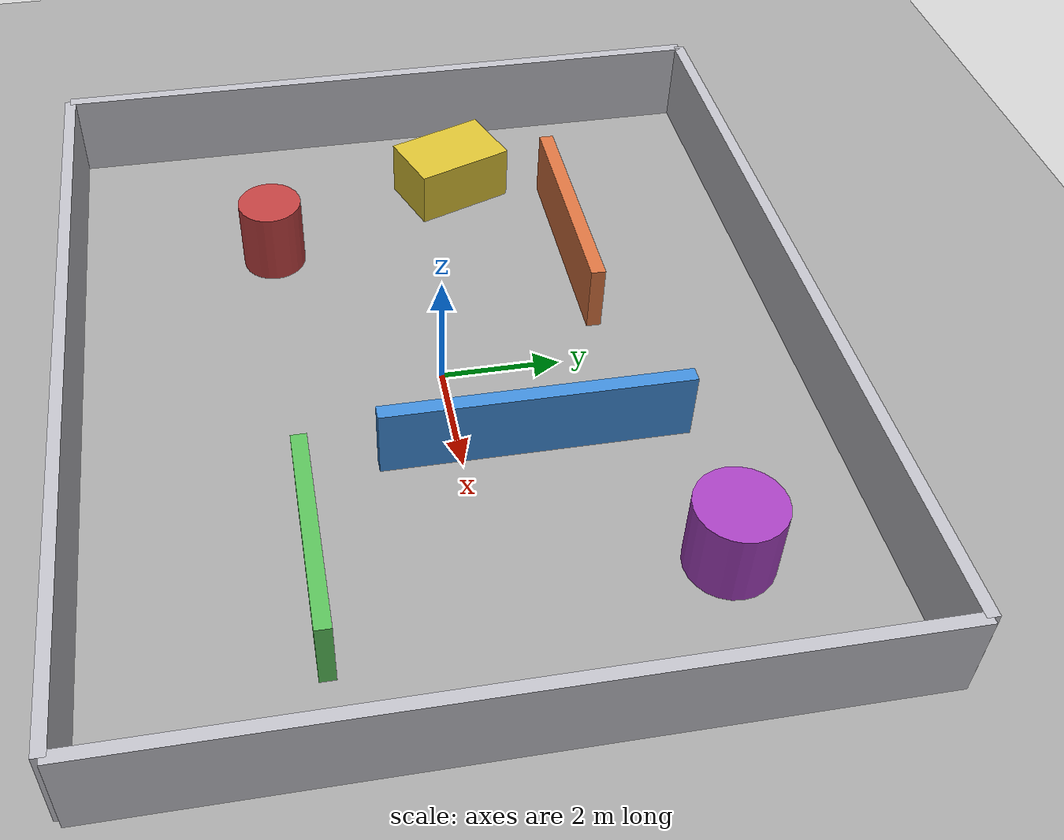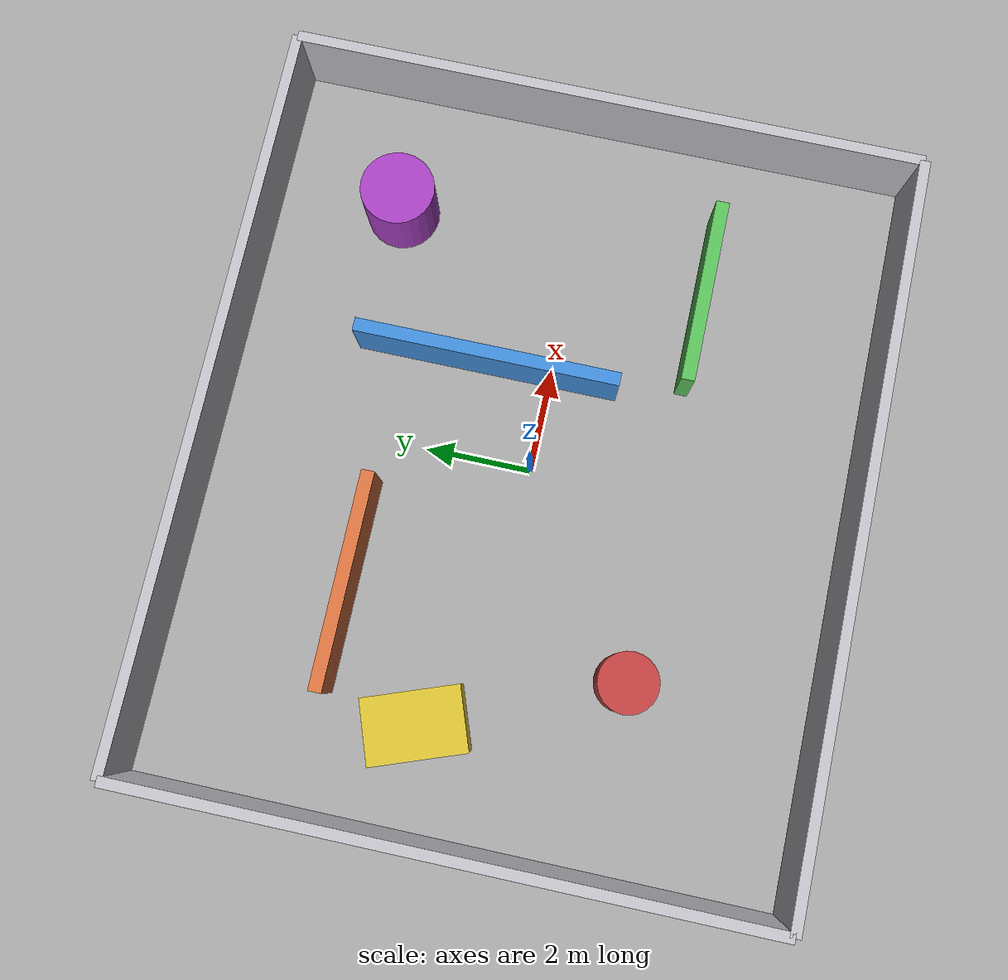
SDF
<sdf version="1.6">
  <world name="mid360_mapping">
    <gravity>0 0 -9.8</gravity>
    <physics name="default_physics" default="1" type="ode">
      <max_step_size>0.001</max_step_size>
      <real_time_factor>1.0</real_time_factor>
      <real_time_update_rate>1000</real_time_update_rate>
    </physics>

    <light name="sun" type="directional">
      <pose>0 0 10 0 0 0</pose>
      <diffuse>0.8 0.8 0.8 1</diffuse>
      <specular>0.1 0.1 0.1 1</specular>
      <direction>-0.5 0.5 -1</direction>
    </light>

    <model name="ground_plane">
      <static>true</static>
      <link name="link">
        <collision name="collision">
          <geometry><plane><normal>0 0 1</normal><size>30 30</size></plane></geometry>
          <surface><friction><ode><mu>100</mu><mu2>50</mu2></ode></friction></surface>
        </collision>
        <visual name="visual">
          <geometry><plane><normal>0 0 1</normal><size>30 30</size></plane></geometry>
          <material><ambient>0.55 0.55 0.55 1</ambient><diffuse>0.65 0.65 0.65 1</diffuse></material>
        </visual>
      </link>
    </model>

    <!-- Outer boundary: 14 m x 12 m. -->
    <model name="wall_north"><static>true</static><pose>0 6 0.75 0 0 0</pose><link name="link">
      <collision name="collision"><geometry><box><size>14 0.2 1.5</size></box></geometry></collision>
      <visual name="visual"><geometry><box><size>14 0.2 1.5</size></box></geometry><material><ambient>0.75 0.75 0.78 1</ambient></material></visual>
    </link></model>
    <model name="wall_south"><static>true</static><pose>0 -6 0.75 0 0 0</pose><link name="link">
      <collision name="collision"><geometry><box><size>14 0.2 1.5</size></box></geometry></collision>
      <visual name="visual"><geometry><box><size>14 0.2 1.5</size></box></geometry><material><ambient>0.75 0.75 0.78 1</ambient></material></visual>
    </link></model>
    <model name="wall_east"><static>true</static><pose>7 0 0.75 0 0 0</pose><link name="link">
      <collision name="collision"><geometry><box><size>0.2 12 1.5</size></box></geometry></collision>
      <visual name="visual"><geometry><box><size>0.2 12 1.5</size></box></geometry><material><ambient>0.75 0.75 0.78 1</ambient></material></visual>
    </link></model>
    <model name="wall_west"><static>true</static><pose>-7 0 0.75 0 0 0</pose><link name="link">
      <collision name="collision"><geometry><box><size>0.2 12 1.5</size></box></geometry></collision>
      <visual name="visual"><geometry><box><size>0.2 12 1.5</size></box></geometry><material><ambient>0.75 0.75 0.78 1</ambient></material></visual>
    </link></model>

    <!-- Asymmetric interior geometry gives SLAM distinctive scan matches. -->
    <model name="wall_center"><static>true</static><pose>1.8 1.2 0.6 0 0 0</pose><link name="link">
      <collision name="collision"><geometry><box><size>0.25 5.0 1.2</size></box></geometry></collision>
      <visual name="visual"><geometry><box><size>0.25 5.0 1.2</size></box></geometry><material><ambient>0.25 0.55 0.85 1</ambient></material></visual>
    </link></model>
    <model name="wall_northwest"><static>true</static><pose>-2.8 2.8 0.6 0 0 0</pose><link name="link">
      <collision name="collision"><geometry><box><size>4.0 0.25 1.2</size></box></geometry></collision>
      <visual name="visual"><geometry><box><size>4.0 0.25 1.2</size></box></geometry><material><ambient>0.85 0.45 0.25 1</ambient></material></visual>
    </link></model>
    <model name="wall_southeast"><static>true</static><pose>3.8 -2.5 0.6 0 0 0</pose><link name="link">
      <collision name="collision"><geometry><box><size>3.5 0.25 1.2</size></box></geometry></collision>
      <visual name="visual"><geometry><box><size>3.5 0.25 1.2</size></box></geometry><material><ambient>0.35 0.75 0.35 1</ambient></material></visual>
    </link></model>

    <model name="pillar_southwest"><static>true</static><pose>-3.5 -2.5 0.65 0 0 0</pose><link name="link">
      <collision name="collision"><geometry><cylinder><radius>0.55</radius><length>1.3</length></cylinder></geometry></collision>
      <visual name="visual"><geometry><cylinder><radius>0.55</radius><length>1.3</length></cylinder></geometry><material><ambient>0.75 0.25 0.25 1</ambient></material></visual>
    </link></model>
    <model name="pillar_northeast"><static>true</static><pose>4.5 3.5 0.65 0 0 0</pose><link name="link">
      <collision name="collision"><geometry><cylinder><radius>0.7</radius><length>1.3</length></cylinder></geometry></collision>
      <visual name="visual"><geometry><cylinder><radius>0.7</radius><length>1.3</length></cylinder></geometry><material><ambient>0.65 0.25 0.75 1</ambient></material></visual>
    </link></model>
    <model name="box_west"><static>true</static><pose>-5 1 0.5 0 0 0.35</pose><link name="link">
      <collision name="collision"><geometry><box><size>1.2 1.8 1.0</size></box></geometry></collision>
      <visual name="visual"><geometry><box><size>1.2 1.8 1.0</size></box></geometry><material><ambient>0.85 0.75 0.2 1</ambient></material></visual>
    </link></model>

    <scene><ambient>0.45 0.45 0.45 1</ambient><background>0.75 0.8 0.9 1</background><shadows>true</shadows></scene>
    <gui fullscreen="0"><camera name="user_camera"><pose>11 -13 10 0 0.55 2.35</pose></camera></gui>
  </world>
</sdf>
